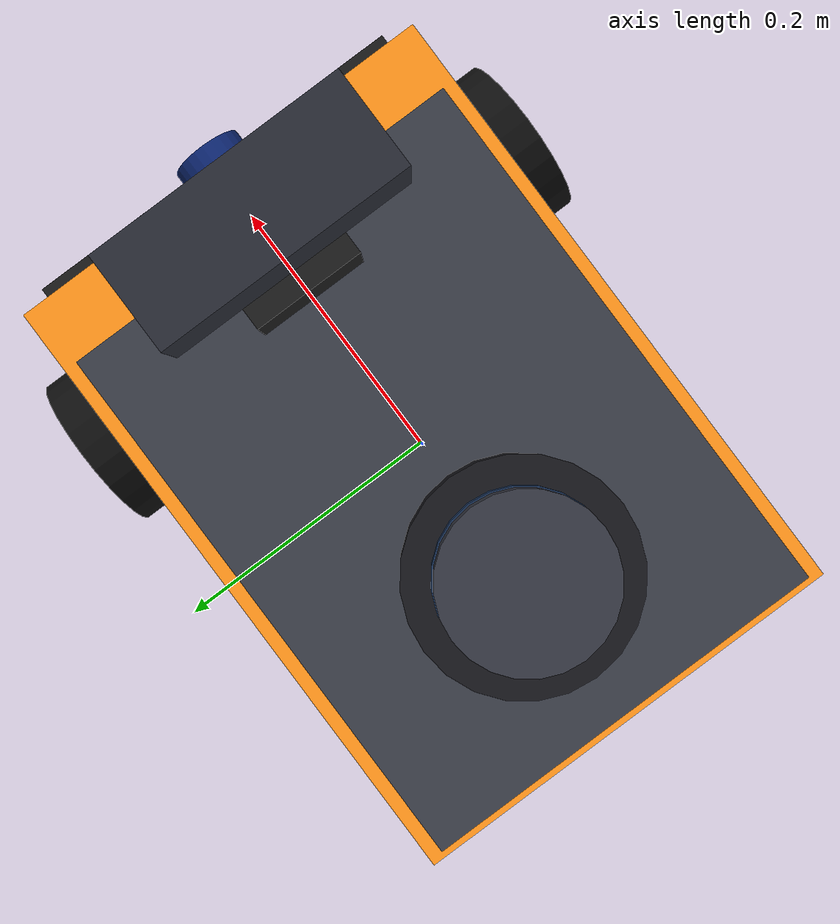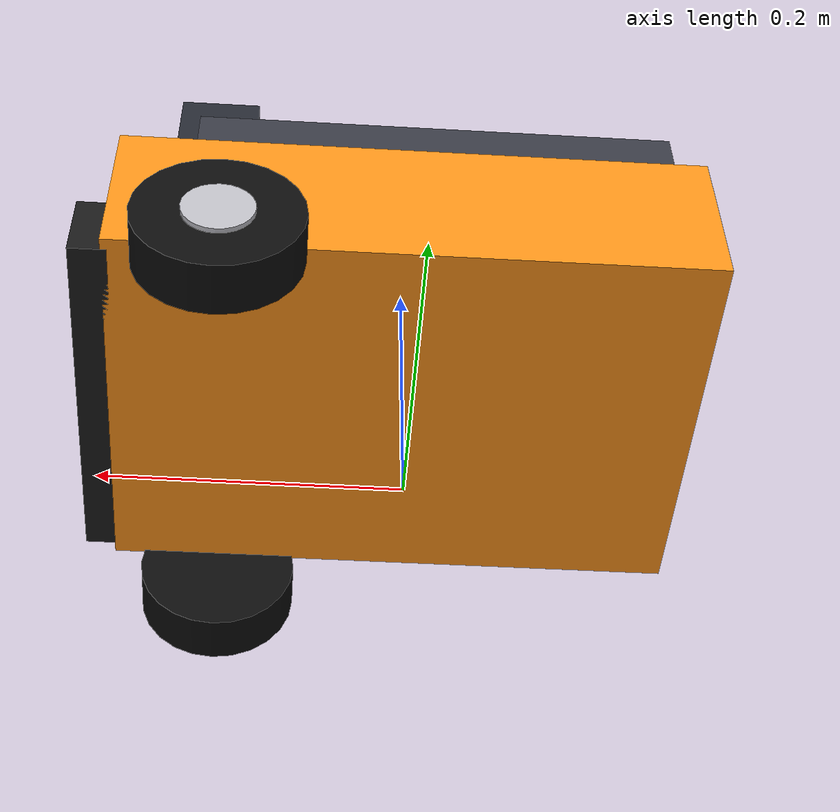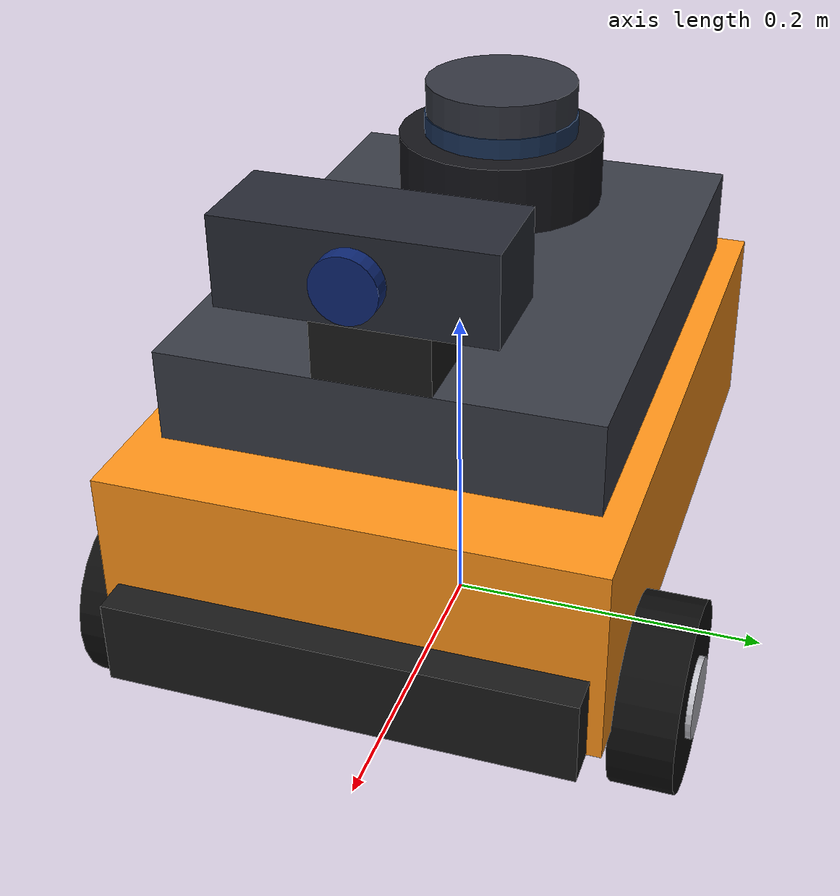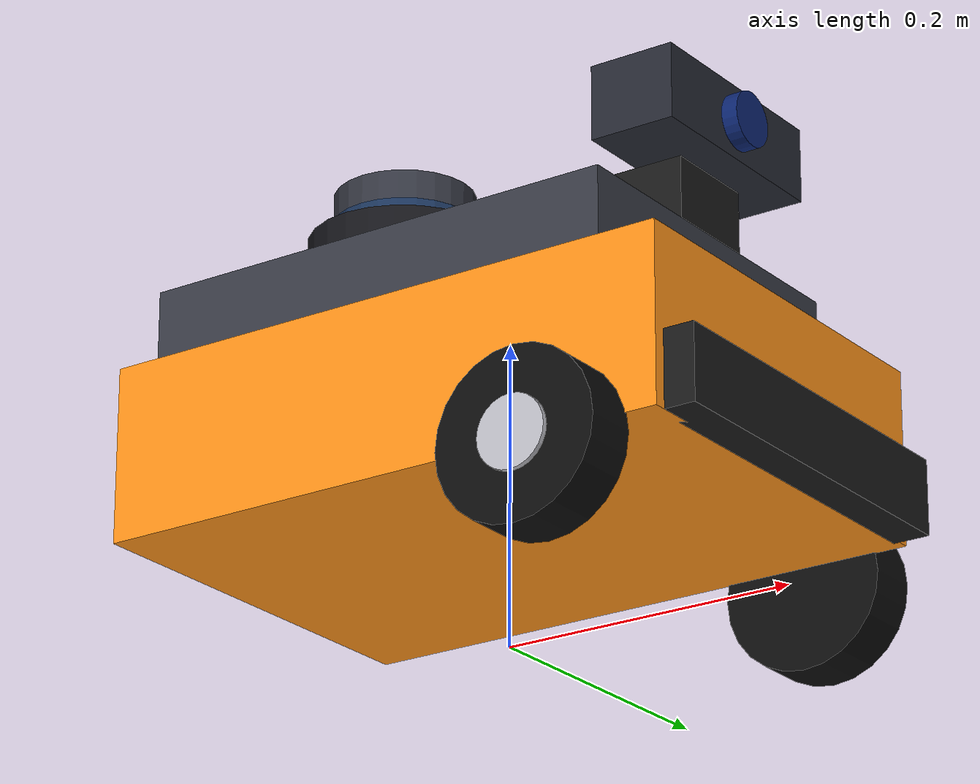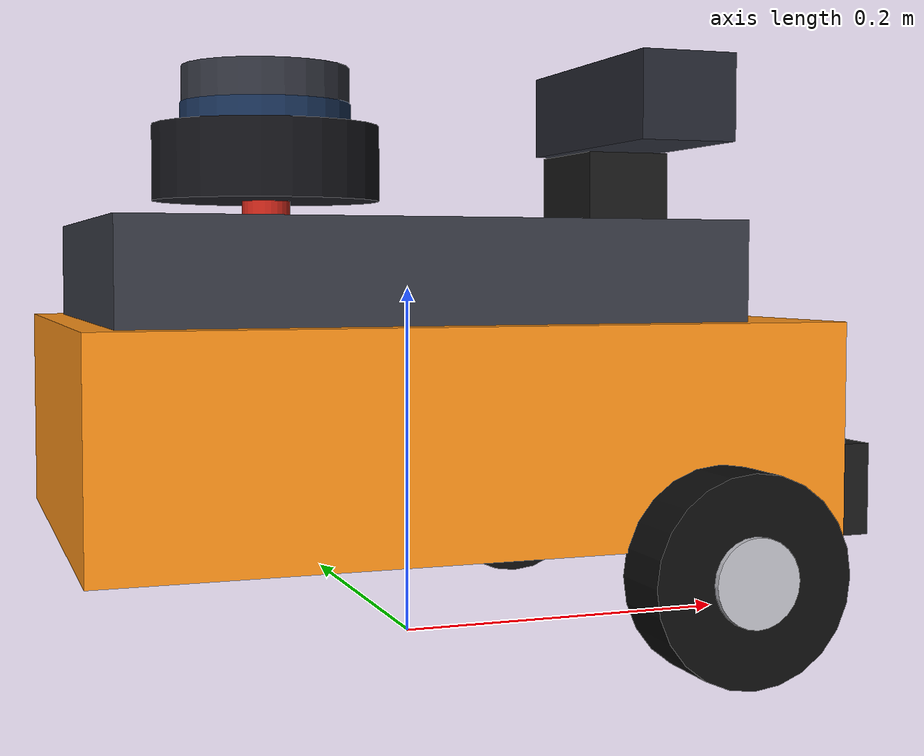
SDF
<sdf version='1.7'>
<model name='my_car'>
      <pose>0 0 0 0 0 0</pose>
      <link name='chassis'>
        <pose>0 0 0 0 -0 0</pose>
        <inertial><mass>1.2</mass><inertia><ixx>0.0034</ixx><ixy>0</ixy><ixz>0</ixz><iyy>0.0063</iyy><iyz>0</iyz><izz>0.0087</izz></inertia><pose>0 0 0 0 -0 0</pose></inertial>
        <collision name='body_collision'><pose>0 0 0.125 0 -0 0</pose><geometry><box><size>0.4 0.28333333 0.11666667</size></box></geometry><max_contacts>10</max_contacts><surface><contact><ode/></contact><bounce/><friction><torsional><ode/></torsional><ode/></friction></surface></collision>
        <collision name='caster_front'><pose>0.15 0 0.025 0 -0 0</pose><geometry><sphere><radius>0.025</radius></sphere></geometry><surface><friction><ode><mu>0.01</mu><mu2>0.01</mu2></ode><torsional><ode/></torsional></friction><contact><ode/></contact><bounce/></surface><max_contacts>10</max_contacts></collision>
        <collision name='caster_back'><pose>-0.15 0 0.025 0 -0 0</pose><geometry><sphere><radius>0.025</radius></sphere></geometry><surface><friction><ode><mu>0.01</mu><mu2>0.01</mu2></ode><torsional><ode/></torsional></friction><contact><ode/></contact><bounce/></surface><max_contacts>10</max_contacts></collision>
        <visual name='body_lower'><pose>0 0 0.125 0 -0 0</pose><geometry><box><size>0.4 0.28333333 0.11666667</size></box></geometry><material><ambient>0.85 0.45 0.05 1</ambient><diffuse>1 0.58 0.1 1</diffuse><specular>0.5 0.5 0.5 1</specular></material></visual>
        <visual name='body_upper'><pose>-0.016666667 0 0.20833333 0 -0 0</pose><geometry><box><size>0.33333333 0.25 0.058333333</size></box></geometry><material><ambient>0.12 0.12 0.14 1</ambient><diffuse>0.22 0.23 0.27 1</diffuse><specular>0.6 0.6 0.65 1</specular></material></visual>
        <visual name='bumper'><pose>0.20833333 0 0.091666667 0 -0 0</pose><geometry><box><size>0.025 0.26666667 0.05</size></box></geometry><material><ambient>0.05 0.05 0.05 1</ambient><diffuse>0.1 0.1 0.1 1</diffuse></material></visual>
        <visual name='camera_mount'><pose>0.125 0 0.25833333 0 -0 0</pose><geometry><box><size>0.05 0.066666667 0.041666667</size></box></geometry><material><ambient>0.05 0.05 0.05 1</ambient><diffuse>0.1 0.1 0.1 1</diffuse></material></visual>
        <visual name='camera_body'><pose>0.14166667 0 0.30833333 0 -0 0</pose><geometry><box><size>0.058333333 0.15 0.05</size></box></geometry><material><ambient>0.08 0.08 0.1 1</ambient><diffuse>0.15 0.16 0.2 1</diffuse><specular>0.7 0.7 0.75 1</specular></material></visual>
        <visual name='camera_lens'><pose>0.175 0 0.30833333 3.14159 1.57079 3.14159</pose><geometry><cylinder><radius>0.018333333</radius><length>0.013333333</length></cylinder></geometry><material><ambient>0.02 0.05 0.15 1</ambient><diffuse>0.05 0.15 0.45 1</diffuse><specular>1 1 1 1</specular><emissive>0.02 0.05 0.15 1</emissive></material></visual>
        <visual name='lidar_mast'><pose>-0.083333333 0 0.235 0 -0 0</pose><geometry><cylinder><radius>0.013333333</radius><length>0.07</length></cylinder></geometry><material><ambient>0.5 0.08 0.05 1</ambient><diffuse>0.8 0.15 0.1 1</diffuse></material></visual>
        <visual name='lidar_base'><pose>-0.083333333 0 0.27 0 -0 0</pose><geometry><cylinder><radius>0.063333333</radius><length>0.041666667</length></cylinder></geometry><material><ambient>0.03 0.03 0.035 1</ambient><diffuse>0.08 0.08 0.1 1</diffuse></material></visual>
        <visual name='lidar_head'><pose>-0.083333333 0 0.30 0 -0 0</pose><geometry><cylinder><radius>0.046666667</radius><length>0.046666667</length></cylinder></geometry><material><ambient>0.1 0.1 0.12 1</ambient><diffuse>0.2 0.21 0.25 1</diffuse></material></visual>
        <visual name='lidar_window'><pose>-0.083333333 0 0.295 0 -0 0</pose><geometry><cylinder><radius>0.0475</radius><length>0.016666667</length></cylinder></geometry><material><ambient>0.05 0.08 0.12 1</ambient><diffuse>0.1 0.2 0.35 1</diffuse><specular>1 1 1 1</specular></material></visual>
        <self_collide>0</self_collide><enable_wind>0</enable_wind><kinematic>0</kinematic>
      </link>
      <link name='left_wheel'>
        <pose>0.125 0.15833333 0.055 0 -0 0</pose>
        <inertial><mass>0.15</mass><inertia><ixx>0.0001</ixx><ixy>0</ixy><ixz>0</ixz><iyy>0.0001</iyy><iyz>0</iyz><izz>0.0001</izz></inertia><pose>0 0 0 0 -0 0</pose></inertial>
        <collision name='collision'><pose>0 0 0 1.5708 -0 0</pose><geometry><cylinder><radius>0.055</radius><length>0.036666667</length></cylinder></geometry><surface><friction><ode><mu>1.5</mu><mu2>1.5</mu2></ode><torsional><ode/></torsional></friction><contact><ode/></contact><bounce/></surface><max_contacts>10</max_contacts></collision>
        <visual name='visual'><pose>0 0 0 1.5708 -0 0</pose><geometry><cylinder><radius>0.055</radius><length>0.036666667</length></cylinder></geometry><material><ambient>0.02 0.02 0.02 1</ambient><diffuse>0.05 0.05 0.05 1</diffuse></material></visual>
        <visual name='hub'><pose>0 0.02 0 1.5708 -0 0</pose><geometry><cylinder><radius>0.023333333</radius><length>0.0033333333</length></cylinder></geometry><material><ambient>0.5 0.5 0.52 1</ambient><diffuse>0.75 0.75 0.78 1</diffuse></material></visual>
        <self_collide>0</self_collide><enable_wind>0</enable_wind><kinematic>0</kinematic>
      </link>
      <joint name='left_wheel_joint' type='revolute'>
        <parent>chassis</parent><child>left_wheel</child><pose>0 0 0 0 -0 0</pose>
        <axis><xyz>0 1 0</xyz><limit><lower>-1e+16</lower><upper>1e+16</upper></limit><dynamics><spring_reference>0</spring_reference><spring_stiffness>0</spring_stiffness></dynamics></axis>
      </joint>
      <link name='right_wheel'>
        <pose>0.125 -0.15833333 0.055 0 -0 0</pose>
        <inertial><mass>0.15</mass><inertia><ixx>0.0001</ixx><ixy>0</ixy><ixz>0</ixz><iyy>0.0001</iyy><iyz>0</iyz><izz>0.0001</izz></inertia><pose>0 0 0 0 -0 0</pose></inertial>
        <collision name='collision'><pose>0 0 0 1.5708 -0 0</pose><geometry><cylinder><radius>0.055</radius><length>0.036666667</length></cylinder></geometry><surface><friction><ode><mu>1.5</mu><mu2>1.5</mu2></ode><torsional><ode/></torsional></friction><contact><ode/></contact><bounce/></surface><max_contacts>10</max_contacts></collision>
        <visual name='visual'><pose>0 0 0 1.5708 -0 0</pose><geometry><cylinder><radius>0.055</radius><length>0.036666667</length></cylinder></geometry><material><ambient>0.02 0.02 0.02 1</ambient><diffuse>0.05 0.05 0.05 1</diffuse></material></visual>
        <visual name='hub'><pose>0 -0.02 0 1.5708 -0 0</pose><geometry><cylinder><radius>0.023333333</radius><length>0.0033333333</length></cylinder></geometry><material><ambient>0.5 0.5 0.52 1</ambient><diffuse>0.75 0.75 0.78 1</diffuse></material></visual>
        <self_collide>0</self_collide><enable_wind>0</enable_wind><kinematic>0</kinematic>
      </link>
      <joint name='right_wheel_joint' type='revolute'>
        <parent>chassis</parent><child>right_wheel</child><pose>0 0 0 0 -0 0</pose>
        <axis><xyz>0 1 0</xyz><limit><lower>-1e+16</lower><upper>1e+16</upper></limit><dynamics><spring_reference>0</spring_reference><spring_stiffness>0</spring_stiffness></dynamics></axis>
      </joint>
      <plugin name='diff_drive' filename='libgazebo_ros_diff_drive.so'>
        <alwaysOn>1</alwaysOn><updateRate>50</updateRate><legacyMode>0</legacyMode>
        <leftJoint>left_wheel_joint</leftJoint><rightJoint>right_wheel_joint</rightJoint>
        <!-- Effective encoder/drive separation calibrated from Gazebo joint
             deltas is 0.13572 m after the 0.42 world scale. -->
        <wheelSeparation>0.32314286</wheelSeparation><wheelDiameter>0.11</wheelDiameter><wheelTorque>10</wheelTorque><wheelAcceleration>1.0</wheelAcceleration>
        <commandTopic>cmd_vel</commandTopic><odometryTopic>odom</odometryTopic>
        <odometryFrame>odom</odometryFrame><robotBaseFrame>chassis</robotBaseFrame>
        <publishTf>0</publishTf><publishOdomTF>0</publishOdomTF>
        <publishWheelTF>0</publishWheelTF><publishWheelJointState>1</publishWheelJointState>
      </plugin>
      <link name='camera_link'>
        <pose>0.175 0 0.30833333 0 -0 0</pose>
        <inertial><mass>0.01</mass><inertia><ixx>1e-06</ixx><ixy>0</ixy><ixz>0</ixz><iyy>1e-06</iyy><iyz>0</iyz><izz>1e-06</izz></inertia><pose>0 0 0 0 -0 0</pose></inertial>
        <sensor name='depth_camera' type='depth'>
          <always_on>1</always_on><update_rate>15</update_rate><visualize>0</visualize>
          <camera>
            <horizontal_fov>1.047</horizontal_fov>
            <image><width>640</width><height>480</height><format>R8G8B8</format></image>
            <clip><near>0.05</near><far>8.0</far></clip>
          </camera>
          <plugin name='depth_camera_plugin' filename='libgazebo_ros_depth_camera.so'>
            <alwaysOn>1</alwaysOn><updateRate>15</updateRate>
            <cameraName>camera</cameraName><frameName>camera_optical_frame</frameName>
            <imageTopicName>image_raw</imageTopicName>
            <depthImageTopicName>depth/image_raw</depthImageTopicName>
            <pointCloudTopicName>depth/points</pointCloudTopicName>
            <cameraInfoTopicName>camera_info</cameraInfoTopicName>
            <hackBaseline>0</hackBaseline>
          </plugin>
        </sensor>
        <self_collide>0</self_collide><enable_wind>0</enable_wind><kinematic>0</kinematic>
      </link>
      <joint name='camera_joint' type='fixed'><parent>chassis</parent><child>camera_link</child></joint>
      <link name='lidar_link'>
        <pose>-0.083333333 0 0.30 0 -0 0</pose>
        <inertial><mass>0.01</mass><inertia><ixx>1e-06</ixx><ixy>0</ixy><ixz>0</ixz><iyy>1e-06</iyy><iyz>0</iyz><izz>1e-06</izz></inertia><pose>0 0 0 0 -0 0</pose></inertial>
        <sensor name='lidar' type='ray'>
          <always_on>1</always_on><update_rate>10</update_rate><visualize>0</visualize>
          <ray><scan><horizontal><samples>360</samples><resolution>1</resolution><min_angle>-3.14159</min_angle><max_angle>3.14159</max_angle></horizontal><vertical><samples>1</samples><min_angle>0</min_angle><max_angle>0</max_angle></vertical></scan><range><min>0.06</min><max>8</max><resolution>0.01</resolution></range></ray>
          <plugin name='lidar_plugin' filename='libgazebo_ros_laser.so'><topicName>scan</topicName><frameName>lidar_link</frameName></plugin>
        </sensor>
        <self_collide>0</self_collide><enable_wind>0</enable_wind><kinematic>0</kinematic>
      </link>
      <joint name='lidar_joint' type='fixed'><parent>chassis</parent><child>lidar_link</child></joint>
    </model>
</sdf>
